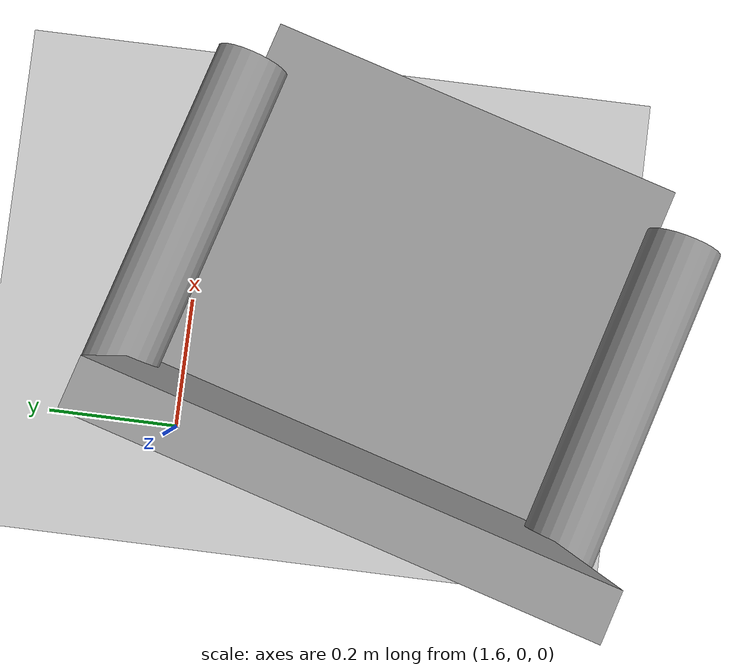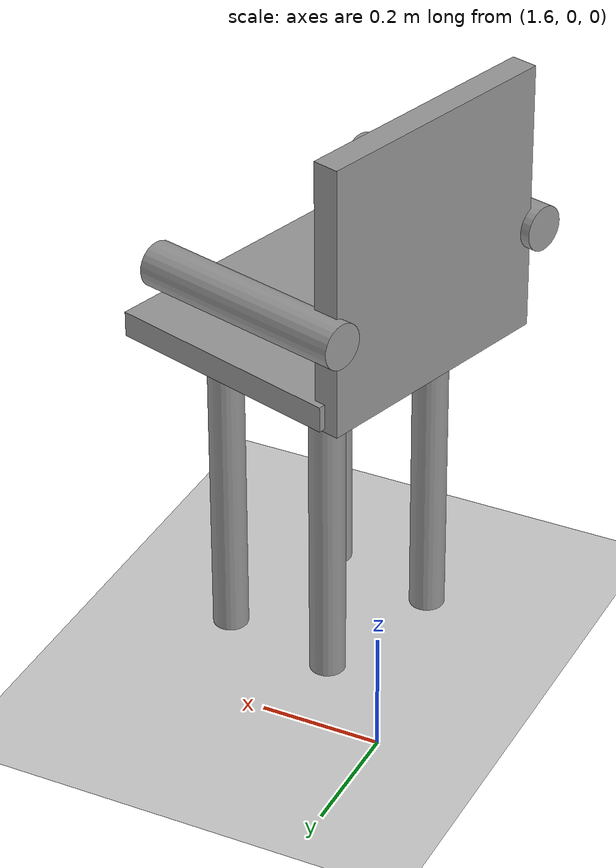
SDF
<sdf version="1.6">
 <world name="default">
  <model name="ground_plane">
   <static>1</static>
   <link name="link">
    <collision name="collision">
     <geometry><plane><normal>0 0 1</normal><size>100 100</size></plane></geometry>
     <surface>
      <contact><collide_bitmask>65535</collide_bitmask></contact>
      <friction><ode><mu>100</mu><mu2>50</mu2></ode></friction>
     </surface>
    </collision>
    <visual name="visual">
     <cast_shadows>0</cast_shadows>
     <geometry><plane><normal>0 0 1</normal><size>100 100</size></plane></geometry>
     <material>
      <script><uri>file://media/materials/scripts/gazebo.material</uri><name>Gazebo/Grey</name></script>
     </material>
    </visual>
   </link>
  </model>
  <model name="chair_clone_0_clone_2_clone">
   <link name="link_4">
    <inertial>
     <mass>0.00194051</mass>
     <inertia>
      <ixx>5.14044e-05</ixx>
      <ixy>0</ixy>
      <ixz>0</ixz>
      <iyy>5.14044e-05</iyy>
      <iyz>0</iyz>
      <izz>8.34973e-07</izz>
     </inertia>
    </inertial>
    <pose>-0.140129 -0.127166 -0.209129 0 -0 0</pose>
    <visual name="visual">
     <geometry><cylinder><radius>0.0293355</radius><length>0.561516</length></cylinder></geometry>
     <material>
      <lighting>1</lighting>
      <script><uri>file://media/materials/scripts/gazebo.material</uri><name>Gazebo/Grey</name></script>
      <emissive>0 0 0 1</emissive>
     </material>
    </visual>
    <collision name="collision">
     <geometry><cylinder><radius>0.029336</radius><length>0.561516</length></cylinder></geometry>
     <surface>
      <friction>
       <ode><mu>1</mu><mu2>1</mu2><fdir1>0 0 0</fdir1><slip1>0</slip1><slip2>0</slip2></ode>
       <torsional>
        <coefficient>1</coefficient>
        <patch_radius>0</patch_radius>
        <surface_radius>0</surface_radius>
        <use_patch_radius>1</use_patch_radius>
        <ode><slip>0</slip></ode>
       </torsional>
      </friction>
      <bounce><restitution_coefficient>0</restitution_coefficient><threshold>1e+06</threshold></bounce>
      <contact>
       <collide_without_contact>0</collide_without_contact>
       <collide_without_contact_bitmask>1</collide_without_contact_bitmask>
       <collide_bitmask>1</collide_bitmask>
       <ode>
        <soft_cfm>0</soft_cfm>
        <soft_erp>0.2</soft_erp>
        <kp>1e+13</kp>
        <kd>1</kd>
        <max_vel>0.01</max_vel>
        <min_depth>0</min_depth>
       </ode>
       <bullet>
        <split_impulse>1</split_impulse>
        <split_impulse_penetration_threshold>-0.01</split_impulse_penetration_threshold>
        <soft_cfm>0</soft_cfm>
        <soft_erp>0.2</soft_erp>
        <kp>1e+13</kp>
        <kd>1</kd>
       </bullet>
      </contact>
     </surface>
    </collision>
   </link>
   <link name="link_4_clone">
    <inertial>
     <mass>0.00194051</mass>
     <inertia>
      <ixx>5.14044e-05</ixx>
      <ixy>0</ixy>
      <ixz>0</ixz>
      <iyy>5.14044e-05</iyy>
      <iyz>0</iyz>
      <izz>8.34973e-07</izz>
     </inertia>
    </inertial>
    <pose>-0.139565 0.126187 -0.209129 0 -0 0</pose>
    <visual name="visual">
     <geometry><cylinder><radius>0.0293355</radius><length>0.561516</length></cylinder></geometry>
     <material>
      <lighting>1</lighting>
      <script><uri>file://media/materials/scripts/gazebo.material</uri><name>Gazebo/Grey</name></script>
      <shader type="pixel"/>
      <emissive>0 0 0 1</emissive>
     </material>
    </visual>
    <collision name="collision">
     <geometry><cylinder><radius>0.029336</radius><length>0.561516</length></cylinder></geometry>
     <surface>
      <friction>
       <ode><mu>1</mu><mu2>1</mu2><fdir1>0 0 0</fdir1><slip1>0</slip1><slip2>0</slip2></ode>
       <torsional>
        <coefficient>1</coefficient>
        <patch_radius>0</patch_radius>
        <surface_radius>0</surface_radius>
        <use_patch_radius>1</use_patch_radius>
        <ode><slip>0</slip></ode>
       </torsional>
      </friction>
      <bounce><restitution_coefficient>0</restitution_coefficient><threshold>1e+06</threshold></bounce>
      <contact>
       <collide_without_contact>0</collide_without_contact>
       <collide_without_contact_bitmask>1</collide_without_contact_bitmask>
       <collide_bitmask>1</collide_bitmask>
       <ode>
        <soft_cfm>0</soft_cfm>
        <soft_erp>0.2</soft_erp>
        <kp>1e+13</kp>
        <kd>1</kd>
        <max_vel>0.01</max_vel>
        <min_depth>0</min_depth>
       </ode>
       <bullet>
        <split_impulse>1</split_impulse>
        <split_impulse_penetration_threshold>-0.01</split_impulse_penetration_threshold>
        <soft_cfm>0</soft_cfm>
        <soft_erp>0.2</soft_erp>
        <kp>1e+13</kp>
        <kd>1</kd>
       </bullet>
      </contact>
     </surface>
    </collision>
   </link>
   <link name="link_4_clone_0">
    <inertial>
     <mass>0.00194051</mass>
     <inertia>
      <ixx>5.14044e-05</ixx>
      <ixy>0</ixy>
      <ixz>0</ixz>
      <iyy>5.14044e-05</iyy>
      <iyz>0</iyz>
      <izz>8.34973e-07</izz>
     </inertia>
    </inertial>
    <pose>0.062929 0.13105 -0.209129 0 -0 0</pose>
    <visual name="visual">
     <geometry><cylinder><radius>0.0293355</radius><length>0.561516</length></cylinder></geometry>
     <material>
      <lighting>1</lighting>
      <script><uri>file://media/materials/scripts/gazebo.material</uri><name>Gazebo/Grey</name></script>
      <shader type="pixel"/>
      <emissive>0 0 0 1</emissive>
     </material>
    </visual>
    <collision name="collision">
     <geometry><cylinder><radius>0.029336</radius><length>0.561516</length></cylinder></geometry>
     <surface>
      <friction>
       <ode><mu>1</mu><mu2>1</mu2><fdir1>0 0 0</fdir1><slip1>0</slip1><slip2>0</slip2></ode>
       <torsional>
        <coefficient>1</coefficient>
        <patch_radius>0</patch_radius>
        <surface_radius>0</surface_radius>
        <use_patch_radius>1</use_patch_radius>
        <ode><slip>0</slip></ode>
       </torsional>
      </friction>
      <bounce><restitution_coefficient>0</restitution_coefficient><threshold>1e+06</threshold></bounce>
      <contact>
       <collide_without_contact>0</collide_without_contact>
       <collide_without_contact_bitmask>1</collide_without_contact_bitmask>
       <collide_bitmask>1</collide_bitmask>
       <ode>
        <soft_cfm>0</soft_cfm>
        <soft_erp>0.2</soft_erp>
        <kp>1e+13</kp>
        <kd>1</kd>
        <max_vel>0.01</max_vel>
        <min_depth>0</min_depth>
       </ode>
       <bullet>
        <split_impulse>1</split_impulse>
        <split_impulse_penetration_threshold>-0.01</split_impulse_penetration_threshold>
        <soft_cfm>0</soft_cfm>
        <soft_erp>0.2</soft_erp>
        <kp>1e+13</kp>
        <kd>1</kd>
       </bullet>
      </contact>
     </surface>
    </collision>
   </link>
   <link name="link_4_clone_1">
    <inertial>
     <mass>0.00194051</mass>
     <inertia>
      <ixx>5.14044e-05</ixx>
      <ixy>0</ixy>
      <ixz>0</ixz>
      <iyy>5.14044e-05</iyy>
      <iyz>0</iyz>
      <izz>8.34973e-07</izz>
     </inertia>
    </inertial>
    <pose>0.061641 -0.111934 -0.209129 0 -0 0</pose>
    <visual name="visual">
     <geometry><cylinder><radius>0.0293355</radius><length>0.561516</length></cylinder></geometry>
     <material>
      <lighting>1</lighting>
      <script><uri>file://media/materials/scripts/gazebo.material</uri><name>Gazebo/Grey</name></script>
      <shader type="pixel"/>
      <emissive>0 0 0 1</emissive>
     </material>
    </visual>
    <collision name="collision">
     <geometry><cylinder><radius>0.029336</radius><length>0.561516</length></cylinder></geometry>
     <surface>
      <friction>
       <ode><mu>1</mu><mu2>1</mu2><fdir1>0 0 0</fdir1><slip1>0</slip1><slip2>0</slip2></ode>
       <torsional>
        <coefficient>1</coefficient>
        <patch_radius>0</patch_radius>
        <surface_radius>0</surface_radius>
        <use_patch_radius>1</use_patch_radius>
        <ode><slip>0</slip></ode>
       </torsional>
      </friction>
      <bounce><restitution_coefficient>0</restitution_coefficient><threshold>1e+06</threshold></bounce>
      <contact>
       <collide_without_contact>0</collide_without_contact>
       <collide_without_contact_bitmask>1</collide_without_contact_bitmask>
       <collide_bitmask>1</collide_bitmask>
       <ode>
        <soft_cfm>0</soft_cfm>
        <soft_erp>0.2</soft_erp>
        <kp>1e+13</kp>
        <kd>1</kd>
        <max_vel>0.01</max_vel>
        <min_depth>0</min_depth>
       </ode>
       <bullet>
        <split_impulse>1</split_impulse>
        <split_impulse_penetration_threshold>-0.01</split_impulse_penetration_threshold>
        <soft_cfm>0</soft_cfm>
        <soft_erp>0.2</soft_erp>
        <kp>1e+13</kp>
        <kd>1</kd>
       </bullet>
      </contact>
     </surface>
    </collision>
   </link>
   <link name="link_5">
    <inertial>
     <mass>0.00816884</mass>
     <inertia>
      <ixx>0.00015002</ixx>
      <ixy>0</ixy>
      <ixz>0</ixz>
      <iyy>0.000115328</iyy>
      <iyz>0</iyz>
      <izz>0.000262862</izz>
     </inertia>
    </inertial>
    <pose>-0.041662 -0.005028 0.089077 0 -0 0</pose>
    <visual name="visual">
     <geometry><box><size>0.409378 0.467496 0.042729</size></box></geometry>
     <material>
      <lighting>1</lighting>
      <script><uri>file://media/materials/scripts/gazebo.material</uri><name>Gazebo/Grey</name></script>
      <emissive>0 0 0 1</emissive>
     </material>
    </visual>
    <collision name="collision">
     <geometry><box><size>0.409378 0.467496 0.042729</size></box></geometry>
     <surface>
      <friction>
       <ode><mu>1</mu><mu2>1</mu2><fdir1>0 0 0</fdir1><slip1>0</slip1><slip2>0</slip2></ode>
       <torsional>
        <coefficient>1</coefficient>
        <patch_radius>0</patch_radius>
        <surface_radius>0</surface_radius>
        <use_patch_radius>1</use_patch_radius>
        <ode><slip>0</slip></ode>
       </torsional>
      </friction>
      <bounce><restitution_coefficient>0</restitution_coefficient><threshold>1e+06</threshold></bounce>
      <contact>
       <collide_without_contact>0</collide_without_contact>
       <collide_without_contact_bitmask>1</collide_without_contact_bitmask>
       <collide_bitmask>1</collide_bitmask>
       <ode>
        <soft_cfm>0</soft_cfm>
        <soft_erp>0.2</soft_erp>
        <kp>1e+13</kp>
        <kd>1</kd>
        <max_vel>0.01</max_vel>
        <min_depth>0</min_depth>
       </ode>
       <bullet>
        <split_impulse>1</split_impulse>
        <split_impulse_penetration_threshold>-0.01</split_impulse_penetration_threshold>
        <soft_cfm>0</soft_cfm>
        <soft_erp>0.2</soft_erp>
        <kp>1e+13</kp>
        <kd>1</kd>
       </bullet>
      </contact>
     </surface>
    </collision>
   </link>
   <link name="link_6">
    <inertial>
     <mass>0.00855687</mass>
     <inertia>
      <ixx>0.000285159</ixx>
      <ixy>0</ixy>
      <ixz>0</ixz>
      <iyy>0.000146983</iyy>
      <iyz>0</iyz>
      <izz>0.000140925</izz>
     </inertia>
    </inertial>
    <pose>0.165697 -0.006458 0.287866 0 -0 0</pose>
    <visual name="visual">
     <geometry><box><size>0.0439 0.442383 0.451884</size></box></geometry>
     <material>
      <lighting>1</lighting>
      <script><uri>file://media/materials/scripts/gazebo.material</uri><name>Gazebo/Grey</name></script>
      <emissive>0 0 0 1</emissive>
     </material>
    </visual>
    <collision name="collision">
     <geometry><box><size>0.0439 0.442383 0.451884</size></box></geometry>
     <surface>
      <friction>
       <ode><mu>1</mu><mu2>1</mu2><fdir1>0 0 0</fdir1><slip1>0</slip1><slip2>0</slip2></ode>
       <torsional>
        <coefficient>1</coefficient>
        <patch_radius>0</patch_radius>
        <surface_radius>0</surface_radius>
        <use_patch_radius>1</use_patch_radius>
        <ode><slip>0</slip></ode>
       </torsional>
      </friction>
      <bounce><restitution_coefficient>0</restitution_coefficient><threshold>1e+06</threshold></bounce>
      <contact>
       <collide_without_contact>0</collide_without_contact>
       <collide_without_contact_bitmask>1</collide_without_contact_bitmask>
       <collide_bitmask>1</collide_bitmask>
       <ode>
        <soft_cfm>0</soft_cfm>
        <soft_erp>0.2</soft_erp>
        <kp>1e+13</kp>
        <kd>1</kd>
        <max_vel>0.01</max_vel>
        <min_depth>0</min_depth>
       </ode>
       <bullet>
        <split_impulse>1</split_impulse>
        <split_impulse_penetration_threshold>-0.01</split_impulse_penetration_threshold>
        <soft_cfm>0</soft_cfm>
        <soft_erp>0.2</soft_erp>
        <kp>1e+13</kp>
        <kd>1</kd>
       </bullet>
      </contact>
     </surface>
    </collision>
   </link>
   <link name="link_7">
    <inertial>
     <mass>0.00209129</mass>
     <inertia>
      <ixx>2.57536e-05</ixx>
      <ixy>0</ixy>
      <ixz>0</ixz>
      <iyy>2.57536e-05</iyy>
      <iyz>0</iyz>
      <izz>1.44551e-06</izz>
     </inertia>
    </inertial>
    <pose>0.0147 0.228665 0.230372 0 1.55081 0</pose>
    <visual name="visual">
     <geometry><cylinder><radius>0.0371808</radius><length>0.378984</length></cylinder></geometry>
     <material>
      <lighting>1</lighting>
      <script><uri>file://media/materials/scripts/gazebo.material</uri><name>Gazebo/Grey</name></script>
      <emissive>0 0 0 1</emissive>
     </material>
    </visual>
    <collision name="collision">
     <geometry><cylinder><radius>0.037181</radius><length>0.378984</length></cylinder></geometry>
     <surface>
      <friction>
       <ode><mu>1</mu><mu2>1</mu2><fdir1>0 0 0</fdir1><slip1>0</slip1><slip2>0</slip2></ode>
       <torsional>
        <coefficient>1</coefficient>
        <patch_radius>0</patch_radius>
        <surface_radius>0</surface_radius>
        <use_patch_radius>1</use_patch_radius>
        <ode><slip>0</slip></ode>
       </torsional>
      </friction>
      <bounce><restitution_coefficient>0</restitution_coefficient><threshold>1e+06</threshold></bounce>
      <contact>
       <collide_without_contact>0</collide_without_contact>
       <collide_without_contact_bitmask>1</collide_without_contact_bitmask>
       <collide_bitmask>1</collide_bitmask>
       <ode>
        <soft_cfm>0</soft_cfm>
        <soft_erp>0.2</soft_erp>
        <kp>1e+13</kp>
        <kd>1</kd>
        <max_vel>0.01</max_vel>
        <min_depth>0</min_depth>
       </ode>
       <bullet>
        <split_impulse>1</split_impulse>
        <split_impulse_penetration_threshold>-0.01</split_impulse_penetration_threshold>
        <soft_cfm>0</soft_cfm>
        <soft_erp>0.2</soft_erp>
        <kp>1e+13</kp>
        <kd>1</kd>
       </bullet>
      </contact>
     </surface>
    </collision>
   </link>
   <link name="link_7_clone">
    <inertial>
     <mass>0.00209129</mass>
     <inertia>
      <ixx>2.57536e-05</ixx>
      <ixy>0</ixy>
      <ixz>0</ixz>
      <iyy>2.57536e-05</iyy>
      <iyz>0</iyz>
      <izz>1.44551e-06</izz>
     </inertia>
    </inertial>
    <pose>0.01639 -0.235319 0.229201 0 1.55081 0</pose>
    <visual name="visual">
     <geometry><cylinder><radius>0.0371808</radius><length>0.378984</length></cylinder></geometry>
     <material>
      <lighting>1</lighting>
      <script><uri>file://media/materials/scripts/gazebo.material</uri><name>Gazebo/Grey</name></script>
      <shader type="pixel"/>
      <emissive>0 0 0 1</emissive>
     </material>
    </visual>
    <collision name="collision">
     <geometry><cylinder><radius>0.037181</radius><length>0.378984</length></cylinder></geometry>
     <surface>
      <friction>
       <ode><mu>1</mu><mu2>1</mu2><fdir1>0 0 0</fdir1><slip1>0</slip1><slip2>0</slip2></ode>
       <torsional>
        <coefficient>1</coefficient>
        <patch_radius>0</patch_radius>
        <surface_radius>0</surface_radius>
        <use_patch_radius>1</use_patch_radius>
        <ode><slip>0</slip></ode>
       </torsional>
      </friction>
      <bounce><restitution_coefficient>0</restitution_coefficient><threshold>1e+06</threshold></bounce>
      <contact>
       <collide_without_contact>0</collide_without_contact>
       <collide_without_contact_bitmask>1</collide_without_contact_bitmask>
       <collide_bitmask>1</collide_bitmask>
       <ode>
        <soft_cfm>0</soft_cfm>
        <soft_erp>0.2</soft_erp>
        <kp>1e+13</kp>
        <kd>1</kd>
        <max_vel>0.01</max_vel>
        <min_depth>0</min_depth>
       </ode>
       <bullet>
        <split_impulse>1</split_impulse>
        <split_impulse_penetration_threshold>-0.01</split_impulse_penetration_threshold>
        <soft_cfm>0</soft_cfm>
        <soft_erp>0.2</soft_erp>
        <kp>1e+13</kp>
        <kd>1</kd>
       </bullet>
      </contact>
     </surface>
    </collision>
   </link>
   <joint name="link_5_JOINT_2" type="fixed">
    <parent>link_5</parent>
    <child>link_4_clone_1</child>
    <physics>
     <ode><limit><cfm>0</cfm><erp>0.2</erp></limit><suspension><cfm>0</cfm><erp>0.2</erp></suspension></ode>
    </physics>
   </joint>
   <joint name="link_5_JOINT_3" type="fixed">
    <parent>link_5</parent>
    <child>link_4</child>
    <physics>
     <ode><limit><cfm>0</cfm><erp>0.2</erp></limit><suspension><cfm>0</cfm><erp>0.2</erp></suspension></ode>
    </physics>
   </joint>
   <joint name="link_5_JOINT_4" type="fixed">
    <parent>link_5</parent>
    <child>link_4_clone_0</child>
    <physics>
     <ode><limit><cfm>0</cfm><erp>0.2</erp></limit><suspension><cfm>0</cfm><erp>0.2</erp></suspension></ode>
    </physics>
   </joint>
   <joint name="link_5_JOINT_5" type="fixed">
    <parent>link_5</parent>
    <child>link_4_clone</child>
    <physics>
     <ode><limit><cfm>0</cfm><erp>0.2</erp></limit><suspension><cfm>0</cfm><erp>0.2</erp></suspension></ode>
    </physics>
   </joint>
   <joint name="link_5_JOINT_6" type="fixed">
    <parent>link_5</parent>
    <child>link_6</child>
    <physics>
     <ode><limit><cfm>0</cfm><erp>0.2</erp></limit><suspension><cfm>0</cfm><erp>0.2</erp></suspension></ode>
    </physics>
   </joint>
   <joint name="link_5_JOINT_7" type="fixed">
    <parent>link_5</parent>
    <child>link_7</child>
    <physics>
     <ode><limit><cfm>0</cfm><erp>0.2</erp></limit><suspension><cfm>0</cfm><erp>0.2</erp></suspension></ode>
    </physics>
   </joint>
   <joint name="link_5_JOINT_8" type="fixed">
    <parent>link_5</parent>
    <child>link_7_clone</child>
    <physics>
     <ode><limit><cfm>0</cfm><erp>0.2</erp></limit><suspension><cfm>0</cfm><erp>0.2</erp></suspension></ode>
    </physics>
   </joint>
   <static>0</static>
   <pose>1.78692 -0.270679 0.489879 4e-06 3.1e-05 2.8584</pose>
  </model>
 </world>
</sdf>
